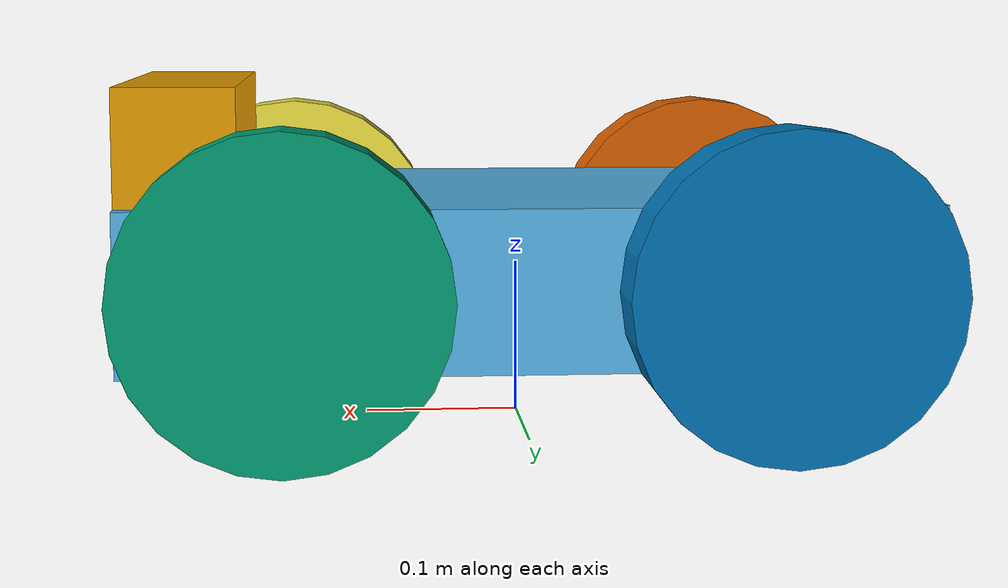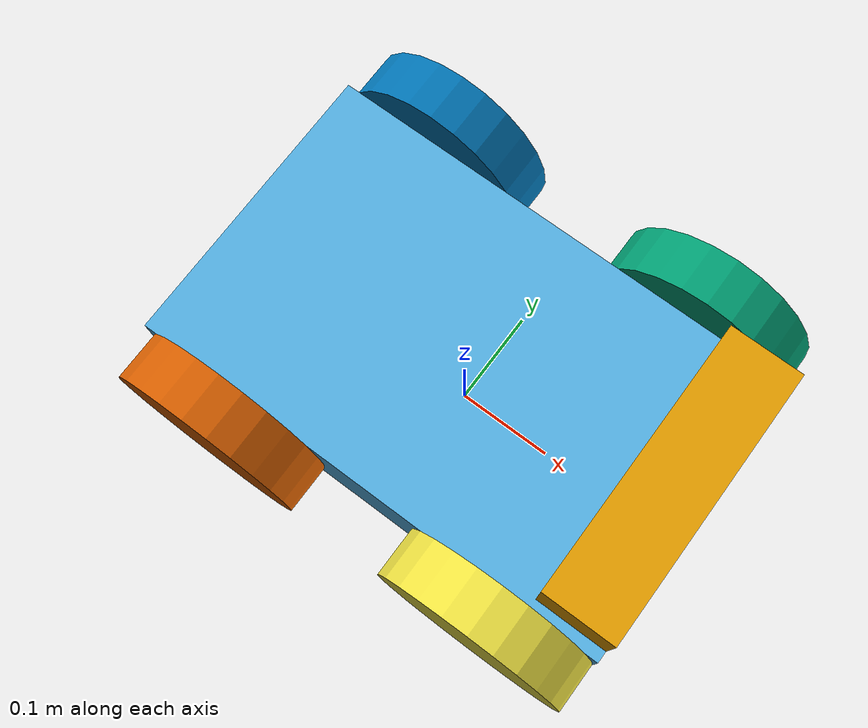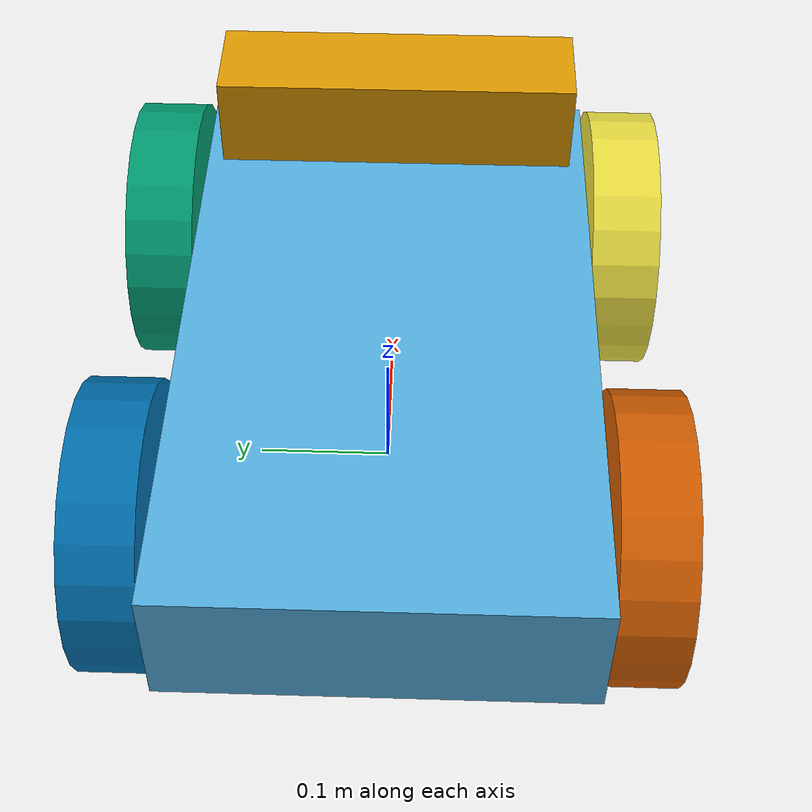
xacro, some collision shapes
<?xml version="1.0"?>
<robot xmlns:xacro="http://www.ros.org/wiki/xacro" name="kinectbot">

  <!--central box properties-->
  <xacro:property name="depthBox" value=".5" />
  <xacro:property name="widthBox" value=".3" />
  <xacro:property name="heightBox" value=".1" />
  <xacro:property name="densityBox" value="100" />

  <!--wheel properties-->
  <xacro:property name="radiusCylinder" value=".1" />
  <xacro:property name="lengthCylinder" value=".05" />
  <xacro:property name="densityCylinder" value="100" />

  <!--kinect properties-->
  <xacro:property name="depthKinect" value="0.073000"/>
  <xacro:property name="widthKinect" value="0.276000"/>
  <xacro:property name="heightKinect" value="0.072000"/>
  <xacro:property name="densityKinect" value="100"/>

  <!--kinect-->
    <link name="kinect">
      <visual>
        <geometry>
          <mesh filename="package://learning_robot_control/meshes/kinect.dae"/>
        </geometry>
        <origin rpy="0 0 0" xyz="0 0 0"/>
      </visual>

      <collision>
        <geometry>
          <box size="${depthKinect} ${widthKinect} ${heightKinect}"/>
        </geometry>
        <origin rpy="0 0 0" xyz="0 0 0"/>
      </collision>

      <inertial>
        <mass value="${depthKinect*widthKinect*heightKinect*densityKinect}"/>
        <inertia
          ixx="${(depthKinect*widthKinect*heightKinect*densityKinect)/12*((heightKinect*heightKinect)+(depthKinect*depthKinect))}"
          ixy="0"
          ixz="0"
          iyy="${(depthKinect*widthKinect*heightKinect*densityKinect)/12*((widthKinect*widthKinect)+(depthKinect*depthKinect))}"
          iyz="0"
          izz="${(depthKinect*widthKinect*heightKinect*densityKinect)/12*((widthKinect*widthKinect)+(heightKinect*heightKinect))}"/>
      </inertial>
      <gazebo reference="kinect">
        <sensor name="kinect_camera" type="depth">
          <update_rate>20</update_rate>

          <camera>
            <horizontal_fov>1.047198</horizontal_fov>
            <image>
              <width>640</width>
              <height>480</height>
              <format>R8G8B8</format>
            </image>
            <clip>
              <near>0.05</near>
              <far>3</far>
            </clip>
          </camera>

          <plugin name="kinect_controller" filename="libgazebo_ros_openni_kinect.so">
            <baseline>0.2</baseline>
            <alwaysOn>true</alwaysOn>
            <updateRate>20.0</updateRate>
            <cameraName>kinect_camera_ir</cameraName>
            <imageTopicName>/kinect_camera/color/image_raw</imageTopicName>
            <cameraInfoTopicName>/kinect_camera/color/camera_info</cameraInfoTopicName>
            <depthImageTopicName>/kinect_camera/depth/image_raw</depthImageTopicName>
            <depthImageCameraInfoTopicName>/kinect_camera/depth/camera_info</depthImageCameraInfoTopicName>
            <pointCloudTopicName>/kinect_camera/depth/points</pointCloudTopicName>
            <frameName>kinect</frameName>
            <pointCloudCutoff>0.5</pointCloudCutoff>
            <pointCloudCutoffMax>3.0</pointCloudCutoffMax>
            <distortionK1>0</distortionK1>
            <distortionK2>0</distortionK2>
            <distortionK3>0</distortionK3>
            <distortionT1>0</distortionT1>
            <distortionT2>0</distortionT2>
            <CxPrime>0</CxPrime>
            <Cx>0</Cx>
            <Cy>0</Cy>
            <focalLength>0</focalLength>
            <hackBaseline>0</hackBaseline>
          </plugin>
        </sensor>
    </gazebo>
    </link>

  <!--box bdy-->
  <link name="base_link">
    <visual>
      <geometry>
        <box size="${depthBox} ${widthBox} ${heightBox}"/>
      </geometry>
      <origin rpy="0 0 0" xyz="0 0 ${heightBox}"/>
    </visual>

    <collision>
      <geometry>
        <box size="${depthBox} ${widthBox} ${heightBox}"/>
      </geometry>
      <origin rpy="0 0 0" xyz="0 0 ${heightBox}"/>
    </collision>

    <inertial>
      <mass value="${depthBox*widthBox*heightBox*densityBox}"/>
      <inertia
        ixx="${(depthBox*widthBox*heightBox*densityBox)/12*((heightBox*heightBox)+(depthBox*depthBox))}"
        ixy="0"
        ixz="0"
        iyy="${(depthBox*widthBox*heightBox*densityBox)/12*((widthBox*widthBox)+(depthBox*depthBox))}"
        iyz="0"
        izz="${(depthBox*widthBox*heightBox*densityBox)/12*((widthBox*widthBox)+(heightBox*heightBox))}"/>
    </inertial>
  </link>

  <!--gazebo plugin for kinect-->
  <gazebo reference="kinect">
    <sensor name="kinect_camera" type="depth">
      <update_rate>20</update_rate>

      <camera>
        <horizontal_fov>1.047198</horizontal_fov>
        <image>
          <width>640</width>
          <height>480</height>
          <format>R8G8B8</format>
        </image>
        <clip>
          <near>0.05</near>
          <far>3</far>
        </clip>
      </camera>

      <plugin name="kinect_controller" filename="libgazebo_ros_openni_kinect.so">
        <baseline>0.2</baseline>
        <alwaysOn>true</alwaysOn>
        <updateRate>20.0</updateRate>
        <cameraName>kinect_camera_ir</cameraName>
        <imageTopicName>/kinect_camera/color/image_raw</imageTopicName>
        <cameraInfoTopicName>/kinect_camera/color/camera_info</cameraInfoTopicName>
        <depthImageTopicName>/kinect_camera/depth/image_raw</depthImageTopicName>
        <depthImageCameraInfoTopicName>/kinect_camera/depth/camera_info</depthImageCameraInfoTopicName>
        <pointCloudTopicName>/kinect_camera/depth/points</pointCloudTopicName>
        <frameName>kinect</frameName>
        <pointCloudCutoff>0.5</pointCloudCutoff>
        <pointCloudCutoffMax>3.0</pointCloudCutoffMax>
        <distortionK1>0</distortionK1>
        <distortionK2>0</distortionK2>
        <distortionK3>0</distortionK3>
        <distortionT1>0</distortionT1>
        <distortionT2>0</distortionT2>
        <CxPrime>0</CxPrime>
        <Cx>0</Cx>
        <Cy>0</Cy>
        <focalLength>0</focalLength>
        <hackBaseline>0</hackBaseline>
      </plugin>
    </sensor>
</gazebo>
<!--gazebo plugin for controlling robot-->

<gazebo>
  <plugin name="gazebo_ros_control" filename="libgazebo_ros_control.so">
    <robotNamespace>/kinectbot</robotNamespace>
  </plugin>
</gazebo>

  <!--algorithm for creating wheels and joints-->
  <xacro:macro name="wheel" params="prefix x y">
      <link name="${prefix}Wheel">
        <visual>
          <geometry>
          	<cylinder length="${lengthCylinder}" radius="${radiusCylinder}"/>
          </geometry>
          <origin rpy="1.5707 0 0" xyz="0 0 0"/>
        </visual>

        <collision>
          <geometry>
            <cylinder length="${lengthCylinder}" radius="${radiusCylinder}"/>
          </geometry>
          <origin rpy="1.5707 0 0" xyz="0 0 0"/>
        </collision>

     <inertial>
          <mass value="${(radiusCylinder*radiusCylinder)*3.1415}"/>
          <inertia
            ixx="${(((radiusCylinder*radiusCylinder)*3.1415)/12)*(3*(radiusCylinder*radiusCylinder)+(lengthCylinder*lengthCylinder))}"
            ixy="0"
            ixz="0"
            iyy="${(((radiusCylinder*radiusCylinder)*3.1415)/12)*(3*(radiusCylinder*radiusCylinder)+(lengthCylinder*lengthCylinder))}"
            iyz="0"
            izz="${(((radiusCylinder*radiusCylinder)*3.1415)/2)*(radiusCylinder*radiusCylinder)}"/>
        </inertial>
      </link>

      <joint name="${prefix}WheelJoint" type="continuous">
        <parent link="base_link"/>
        <child link="${prefix}Wheel"/>
        <axis xyz="0 ${((widthBox/2)+(lengthCylinder/2))*y} 0"/>
        <origin xyz="${((depthBox/2)-radiusCylinder)*x} ${((widthBox/2)+(lengthCylinder/2))*y} ${heightBox}"/>
      </joint>

  <transmission name="${prefix}Tran">
    <type>transmission_interface/SimpleTransmission</type>
      <joint name="${prefix}WheelJoint">
      <hardwareInterface>hardware_interface/VelocityJointInterface</hardwareInterface>
      </joint>
    <actuator name="${prefix}Motor">
      <hardwareInterface>hardware_interface/VelocityJointInterface</hardwareInterface>
      <mechanicalReduction>1</mechanicalReduction>
    </actuator>
  </transmission>
  </xacro:macro>

  <!--Create wheels and joint to the main body using above algorithm-->
  <xacro:wheel prefix="rightFront" x="1" y="1"/>
  <xacro:wheel prefix="leftFront" x="1" y="-1"/>
  <xacro:wheel prefix="rightBack" x="-1" y="1"/>
  <xacro:wheel prefix="leftBack" x="-1" y="-1"/>

  <joint name="kinectToBody" type="fixed">
    <parent link="base_link"/>
    <child link="kinect"/>
    <origin xyz="${(depthBox/2)-(depthKinect/2)} 0 ${(heightBox/2)+heightBox+(heightKinect/2)}"/>
  </joint>

</robot>
